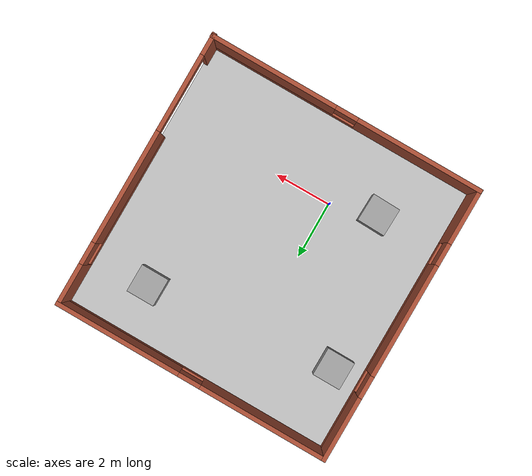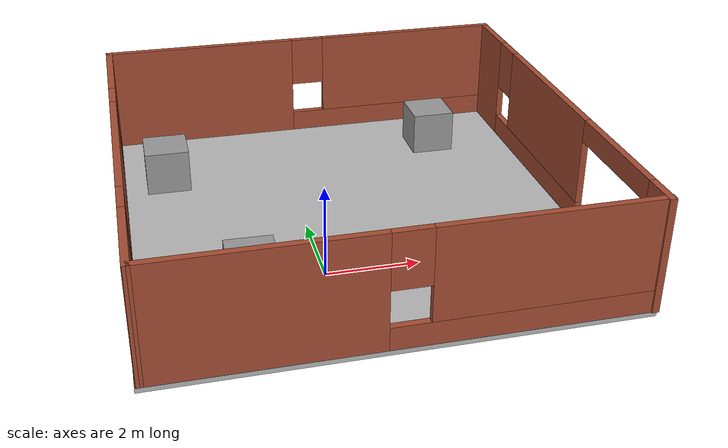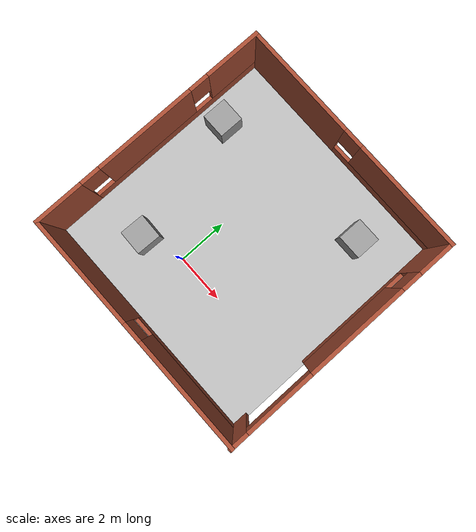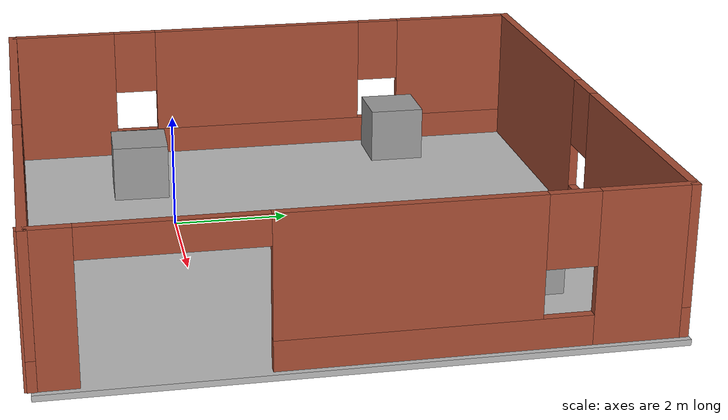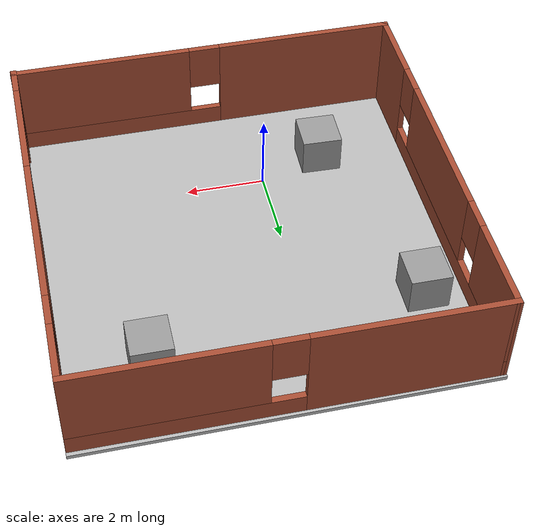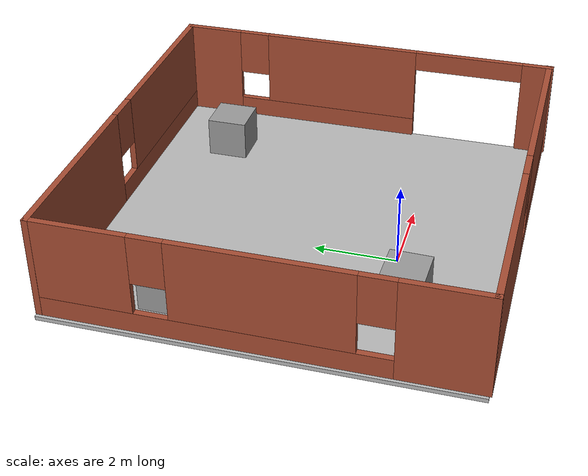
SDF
<sdf version="1.6">
 <world name="default">
  <scene>
   <ambient>0 0 0 1</ambient>
   <shadows>0</shadows>
   <grid>0</grid>
   <background>0.7 0.7 0.7 1</background>
  </scene>
  <light name="sun" type="directional">
   <pose>0 0 10 0 -0 0</pose>
   <diffuse>0.8 0.8 0.8 1</diffuse>
   <specular>0.2 0.2 0.2 1</specular>
   <attenuation>
    <range>1000</range>
    <constant>0.9</constant>
    <linear>0.01</linear>
    <quadratic>0.001</quadratic>
   </attenuation>
   <direction>-0.5 0.1 -0.9</direction>
  </light>
  <model name="ground">
   <pose>1 2.3 -0.1 0 -0 0</pose>
   <static>1</static>
   <link name="ground">
    <collision name="ground_coll"><geometry><box><size>10 10 0.1</size></box></geometry></collision>
    <visual name="ground_vis">
     <geometry><box><size>10 10 0.1</size></box></geometry>
     <material><script><uri>file://warehouse.material</uri><name>course</name></script></material>
    </visual>
   </link>
  </model>
  <gravity>0 0 -9.8</gravity>
  <magnetic_field>6e-06 2.3e-05 -4.2e-05</magnetic_field>
  <atmosphere type="adiabatic"/>
  <physics name="default_physics" default="0" type="ode">
   <max_step_size>0.001</max_step_size>
   <real_time_factor>1</real_time_factor>
   <real_time_update_rate>1000</real_time_update_rate>
  </physics>
  <spherical_coordinates>
   <surface_model>EARTH_WGS84</surface_model>
   <latitude_deg>0</latitude_deg>
   <longitude_deg>0</longitude_deg>
   <elevation>0</elevation>
   <heading_deg>0</heading_deg>
  </spherical_coordinates>
  <model name="AVG_warehouse">
   <pose>1.01211 2.24078 0 0 -0 0</pose>
   <link name="Wall_0">
    <pose>0.005696 -4.92093 0 0 -0 0</pose>
    <visual name="Wall_0_Visual_0">
     <pose>-2.70535 0 1.25 0 -0 0</pose>
     <geometry><box><size>4.56669 0.15 2.5</size></box></geometry>
     <material>
      <script><uri>file://media/materials/scripts/gazebo.material</uri><name>Gazebo/Bricks</name></script>
      <ambient>1 1 1 1</ambient>
     </material>
     <meta><layer>0</layer></meta>
    </visual>
    <collision name="Wall_0_Collision_0">
     <geometry><box><size>4.56669 0.15 2.5</size></box></geometry>
     <pose>-2.70535 0 1.25 0 -0 0</pose>
    </collision>
    <visual name="Wall_0_Visual_1">
     <pose>2.28335 0 0.25 0 -0 0</pose>
     <geometry><box><size>5.41069 0.15 0.5</size></box></geometry>
     <material>
      <script><uri>file://media/materials/scripts/gazebo.material</uri><name>Gazebo/Bricks</name></script>
      <ambient>1 1 1 1</ambient>
     </material>
     <meta><layer>0</layer></meta>
    </visual>
    <collision name="Wall_0_Collision_1">
     <geometry><box><size>5.41069 0.15 0.5</size></box></geometry>
     <pose>2.28335 0 0.25 0 -0 0</pose>
    </collision>
    <visual name="Wall_0_Visual_2">
     <pose>2.68335 0 1.5 0 -0 0</pose>
     <geometry><box><size>4.61069 0.15 2</size></box></geometry>
     <material>
      <script><uri>file://media/materials/scripts/gazebo.material</uri><name>Gazebo/Bricks</name></script>
      <ambient>1 1 1 1</ambient>
     </material>
     <meta><layer>0</layer></meta>
    </visual>
    <collision name="Wall_0_Collision_2">
     <geometry><box><size>4.61069 0.15 2</size></box></geometry>
     <pose>2.68335 0 1.5 0 -0 0</pose>
    </collision>
    <visual name="Wall_0_Visual_3">
     <pose>-0.022001 0 1.9 0 -0 0</pose>
     <geometry><box><size>0.8 0.15 1.2</size></box></geometry>
     <material>
      <script><uri>file://media/materials/scripts/gazebo.material</uri><name>Gazebo/Bricks</name></script>
      <ambient>1 1 1 1</ambient>
     </material>
     <meta><layer>0</layer></meta>
    </visual>
    <collision name="Wall_0_Collision_3">
     <geometry><box><size>0.8 0.15 1.2</size></box></geometry>
     <pose>-0.022001 0 1.9 0 -0 0</pose>
    </collision>
   </link>
   <link name="Wall_3">
    <pose>-4.91365 0.019264 0 0 -0 1.56965</pose>
    <visual name="Wall_3_Visual_0">
     <pose>-4.00376 0 1.25 0 -0 0</pose>
     <geometry><box><size>2.02286 0.15 2.5</size></box></geometry>
     <material>
      <script><uri>file://media/materials/scripts/gazebo.material</uri><name>Gazebo/Bricks</name></script>
      <ambient>1 1 1 1</ambient>
     </material>
     <meta><layer>0</layer></meta>
    </visual>
    <collision name="Wall_3_Collision_0">
     <geometry><box><size>2.02286 0.15 2.5</size></box></geometry>
     <pose>-4.00376 0 1.25 0 -0 0</pose>
    </collision>
    <visual name="Wall_3_Visual_1">
     <pose>1.01143 0 0.25 0 -0 0</pose>
     <geometry><box><size>8.00753 0.15 0.5</size></box></geometry>
     <material>
      <script><uri>file://media/materials/scripts/gazebo.material</uri><name>Gazebo/Bricks</name></script>
      <ambient>1 1 1 1</ambient>
     </material>
     <meta><layer>0</layer></meta>
    </visual>
    <collision name="Wall_3_Collision_1">
     <geometry><box><size>8.00753 0.15 0.5</size></box></geometry>
     <pose>1.01143 0 0.25 0 -0 0</pose>
    </collision>
    <visual name="Wall_3_Visual_2">
     <pose>-0.154146 0 1.5 0 -0 0</pose>
     <geometry><box><size>4.07637 0.15 2</size></box></geometry>
     <material>
      <script><uri>file://media/materials/scripts/gazebo.material</uri><name>Gazebo/Bricks</name></script>
      <ambient>1 1 1 1</ambient>
     </material>
     <meta><layer>0</layer></meta>
    </visual>
    <collision name="Wall_3_Collision_2">
     <geometry><box><size>4.07637 0.15 2</size></box></geometry>
     <pose>-0.154146 0 1.5 0 -0 0</pose>
    </collision>
    <visual name="Wall_3_Visual_3">
     <pose>3.84962 0 1.5 0 -0 0</pose>
     <geometry><box><size>2.33115 0.15 2</size></box></geometry>
     <material>
      <script><uri>file://media/materials/scripts/gazebo.material</uri><name>Gazebo/Bricks</name></script>
      <ambient>1 1 1 1</ambient>
     </material>
     <meta><layer>0</layer></meta>
    </visual>
    <collision name="Wall_3_Collision_3">
     <geometry><box><size>2.33115 0.15 2</size></box></geometry>
     <pose>3.84962 0 1.5 0 -0 0</pose>
    </collision>
    <visual name="Wall_3_Visual_4">
     <pose>-2.59233 0 1.9 0 -0 0</pose>
     <geometry><box><size>0.8 0.15 1.2</size></box></geometry>
     <material>
      <script><uri>file://media/materials/scripts/gazebo.material</uri><name>Gazebo/Bricks</name></script>
      <ambient>1 1 1 1</ambient>
     </material>
     <meta><layer>0</layer></meta>
    </visual>
    <collision name="Wall_3_Collision_4">
     <geometry><box><size>0.8 0.15 1.2</size></box></geometry>
     <pose>-2.59233 0 1.9 0 -0 0</pose>
    </collision>
    <visual name="Wall_3_Visual_5">
     <pose>2.28404 0 1.9 0 -0 0</pose>
     <geometry><box><size>0.8 0.15 1.2</size></box></geometry>
     <material>
      <script><uri>file://media/materials/scripts/gazebo.material</uri><name>Gazebo/Bricks</name></script>
      <ambient>1 1 1 1</ambient>
     </material>
     <meta><layer>0</layer></meta>
    </visual>
    <collision name="Wall_3_Collision_5">
     <geometry><box><size>0.8 0.15 1.2</size></box></geometry>
     <pose>2.28404 0 1.9 0 -0 0</pose>
    </collision>
   </link>
   <link name="Wall_6">
    <pose>-0.000291 4.94216 0 0 -0 -0.003524</pose>
    <visual name="Wall_6_Visual_0">
     <pose>-2.6565 0 1.25 0 -0 0</pose>
     <geometry><box><size>4.6534 0.15 2.5</size></box></geometry>
     <material>
      <script><uri>file://media/materials/scripts/gazebo.material</uri><name>Gazebo/Bricks</name></script>
      <ambient>1 1 1 1</ambient>
     </material>
     <meta><layer>0</layer></meta>
    </visual>
    <collision name="Wall_6_Collision_0">
     <geometry><box><size>4.6534 0.15 2.5</size></box></geometry>
     <pose>-2.6565 0 1.25 0 -0 0</pose>
    </collision>
    <visual name="Wall_6_Visual_1">
     <pose>2.3267 0 0.25 0 -0 0</pose>
     <geometry><box><size>5.31299 0.15 0.5</size></box></geometry>
     <material>
      <script><uri>file://media/materials/scripts/gazebo.material</uri><name>Gazebo/Bricks</name></script>
      <ambient>1 1 1 1</ambient>
     </material>
     <meta><layer>0</layer></meta>
    </visual>
    <collision name="Wall_6_Collision_1">
     <geometry><box><size>5.31299 0.15 0.5</size></box></geometry>
     <pose>2.3267 0 0.25 0 -0 0</pose>
    </collision>
    <visual name="Wall_6_Visual_2">
     <pose>2.7267 0 1.5 0 -0 0</pose>
     <geometry><box><size>4.51299 0.15 2</size></box></geometry>
     <material>
      <script><uri>file://media/materials/scripts/gazebo.material</uri><name>Gazebo/Bricks</name></script>
      <ambient>1 1 1 1</ambient>
     </material>
     <meta><layer>0</layer></meta>
    </visual>
    <collision name="Wall_6_Collision_2">
     <geometry><box><size>4.51299 0.15 2</size></box></geometry>
     <pose>2.7267 0 1.5 0 -0 0</pose>
    </collision>
    <visual name="Wall_6_Visual_3">
     <pose>0.070204 0 1.9 0 -0 0</pose>
     <geometry><box><size>0.8 0.15 1.2</size></box></geometry>
     <material>
      <script><uri>file://media/materials/scripts/gazebo.material</uri><name>Gazebo/Bricks</name></script>
      <ambient>1 1 1 1</ambient>
     </material>
     <meta><layer>0</layer></meta>
    </visual>
    <collision name="Wall_6_Collision_3">
     <geometry><box><size>0.8 0.15 1.2</size></box></geometry>
     <pose>0.070204 0 1.9 0 -0 0</pose>
    </collision>
   </link>
   <link name="Wall_7">
    <pose>4.90742 -0.034719 0 0 -0 -1.5708</pose>
    <visual name="Wall_7_Visual_0">
     <pose>-4.24955 0 1.25 0 -0 0</pose>
     <geometry><box><size>1.5009 0.15 2.5</size></box></geometry>
     <material>
      <script><uri>file://media/materials/scripts/gazebo.material</uri><name>Gazebo/Bricks</name></script>
      <ambient>1 1 1 1</ambient>
     </material>
     <meta><layer>0</layer></meta>
    </visual>
    <collision name="Wall_7_Collision_0">
     <geometry><box><size>1.5009 0.15 2.5</size></box></geometry>
     <pose>-4.24955 0 1.25 0 -0 0</pose>
    </collision>
    <visual name="Wall_7_Visual_1">
     <pose>4.59949 0 1.25 0 -0 0</pose>
     <geometry><box><size>0.801027 0.15 2.5</size></box></geometry>
     <material>
      <script><uri>file://media/materials/scripts/gazebo.material</uri><name>Gazebo/Bricks</name></script>
      <ambient>1 1 1 1</ambient>
     </material>
     <meta><layer>0</layer></meta>
    </visual>
    <collision name="Wall_7_Collision_1">
     <geometry><box><size>0.801027 0.15 2.5</size></box></geometry>
     <pose>4.59949 0 1.25 0 -0 0</pose>
    </collision>
    <visual name="Wall_7_Visual_2">
     <pose>-1.05118 0 0.25 0 -0 0</pose>
     <geometry><box><size>4.89583 0.15 0.5</size></box></geometry>
     <material>
      <script><uri>file://media/materials/scripts/gazebo.material</uri><name>Gazebo/Bricks</name></script>
      <ambient>1 1 1 1</ambient>
     </material>
     <meta><layer>0</layer></meta>
    </visual>
    <collision name="Wall_7_Collision_2">
     <geometry><box><size>4.89583 0.15 0.5</size></box></geometry>
     <pose>-1.05118 0 0.25 0 -0 0</pose>
    </collision>
    <visual name="Wall_7_Visual_3">
     <pose>-0.651183 0 1.5 0 -0 0</pose>
     <geometry><box><size>4.09583 0.15 2</size></box></geometry>
     <material>
      <script><uri>file://media/materials/scripts/gazebo.material</uri><name>Gazebo/Bricks</name></script>
      <ambient>1 1 1 1</ambient>
     </material>
     <meta><layer>0</layer></meta>
    </visual>
    <collision name="Wall_7_Collision_3">
     <geometry><box><size>4.09583 0.15 2</size></box></geometry>
     <pose>-0.651183 0 1.5 0 -0 0</pose>
    </collision>
    <visual name="Wall_7_Visual_4">
     <pose>-3.0991 0 1.9 0 -0 0</pose>
     <geometry><box><size>0.8 0.15 1.2</size></box></geometry>
     <material>
      <script><uri>file://media/materials/scripts/gazebo.material</uri><name>Gazebo/Bricks</name></script>
      <ambient>1 1 1 1</ambient>
     </material>
     <meta><layer>0</layer></meta>
    </visual>
    <collision name="Wall_7_Collision_4">
     <geometry><box><size>0.8 0.15 1.2</size></box></geometry>
     <pose>-3.0991 0 1.9 0 -0 0</pose>
    </collision>
    <visual name="Wall_7_Visual_5">
     <pose>2.79785 0 2.25 0 -0 0</pose>
     <geometry><box><size>2.80224 0.15 0.5</size></box></geometry>
     <material>
      <script><uri>file://media/materials/scripts/gazebo.material</uri><name>Gazebo/Bricks</name></script>
      <ambient>1 1 1 1</ambient>
     </material>
     <meta><layer>0</layer></meta>
    </visual>
    <collision name="Wall_7_Collision_5">
     <geometry><box><size>2.80224 0.15 0.5</size></box></geometry>
     <pose>2.79785 0 2.25 0 -0 0</pose>
    </collision>
   </link>
   <static>1</static>
  </model>
  <model name="unit_box">
   <pose>3.82454 5.30929 0.593996 9e-06 8e-06 -0.004235</pose>
   <link name="link">
    <inertial>
     <mass>1</mass>
     <inertia>
      <ixx>0.166667</ixx>
      <ixy>0</ixy>
      <ixz>0</ixz>
      <iyy>0.166667</iyy>
      <iyz>0</iyz>
      <izz>0.166667</izz>
     </inertia>
    </inertial>
    <collision name="collision"><geometry><box><size>1 1 1</size></box></geometry></collision>
    <visual name="visual">
     <geometry><box><size>1 1 1</size></box></geometry>
     <material>
      <script><name>Gazebo/Grey</name><uri>file://media/materials/scripts/gazebo.material</uri></script>
     </material>
    </visual>
   </link>
  </model>
  <model name="unit_box_0">
   <pose>-2.82629 4.6197 0.593996 4e-06 -1.7e-05 -0.005715</pose>
   <link name="link">
    <inertial>
     <mass>1</mass>
     <inertia>
      <ixx>0.166667</ixx>
      <ixy>0</ixy>
      <ixz>0</ixz>
      <iyy>0.166667</iyy>
      <iyz>0</iyz>
      <izz>0.166667</izz>
     </inertia>
    </inertial>
    <collision name="collision"><geometry><box><size>1 1 1</size></box></geometry></collision>
    <visual name="visual">
     <geometry><box><size>1 1 1</size></box></geometry>
     <material>
      <script><name>Gazebo/Grey</name><uri>file://media/materials/scripts/gazebo.material</uri></script>
     </material>
    </visual>
   </link>
  </model>
  <model name="unit_box_1">
   <pose>-1.57171 -0.485615 0.594006 1.6e-05 -1.5e-05 -0.029534</pose>
   <link name="link">
    <inertial>
     <mass>1</mass>
     <inertia>
      <ixx>0.166667</ixx>
      <ixy>0</ixy>
      <ixz>0</ixz>
      <iyy>0.166667</iyy>
      <iyz>0</iyz>
      <izz>0.166667</izz>
     </inertia>
    </inertial>
    <collision name="collision"><geometry><box><size>1 1 1</size></box></geometry></collision>
    <visual name="visual">
     <geometry><box><size>1 1 1</size></box></geometry>
     <material>
      <script><name>Gazebo/Grey</name><uri>file://media/materials/scripts/gazebo.material</uri></script>
     </material>
    </visual>
   </link>
  </model>
 </world>
</sdf>
